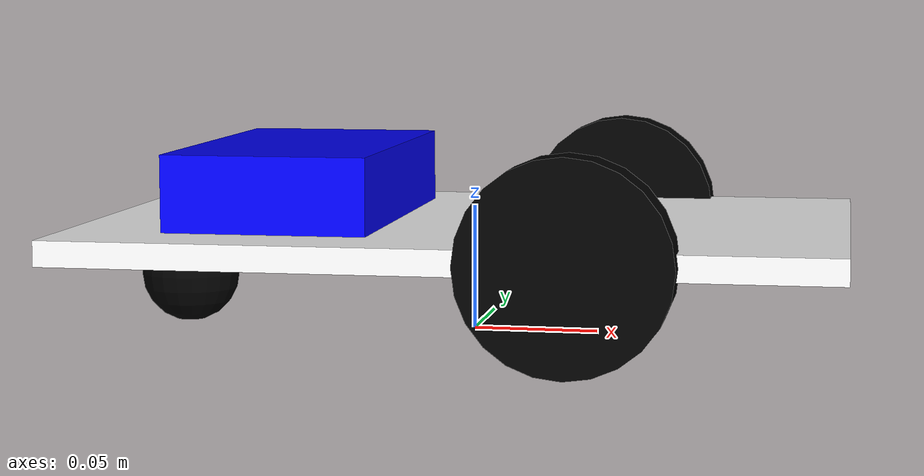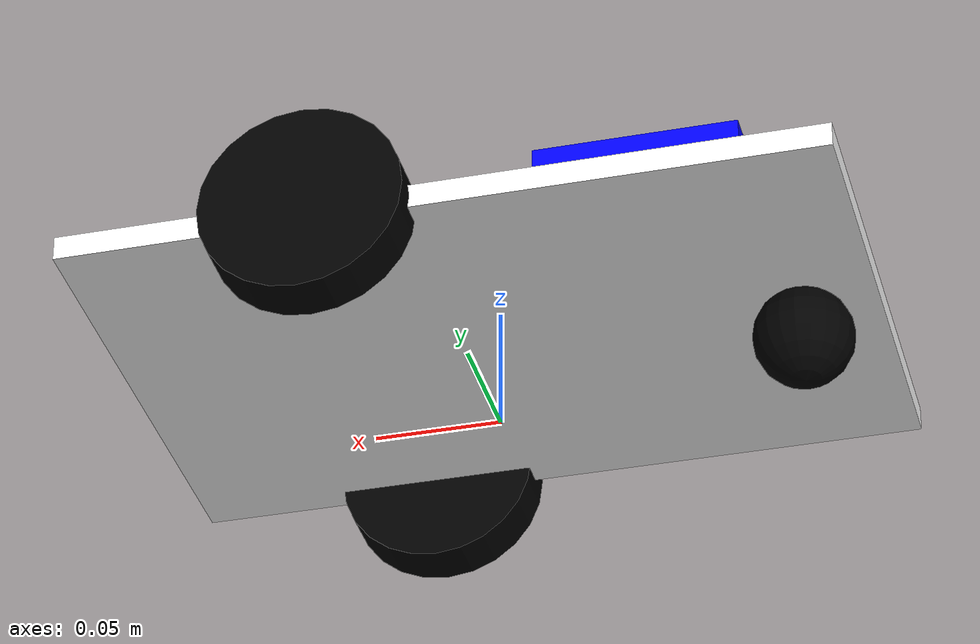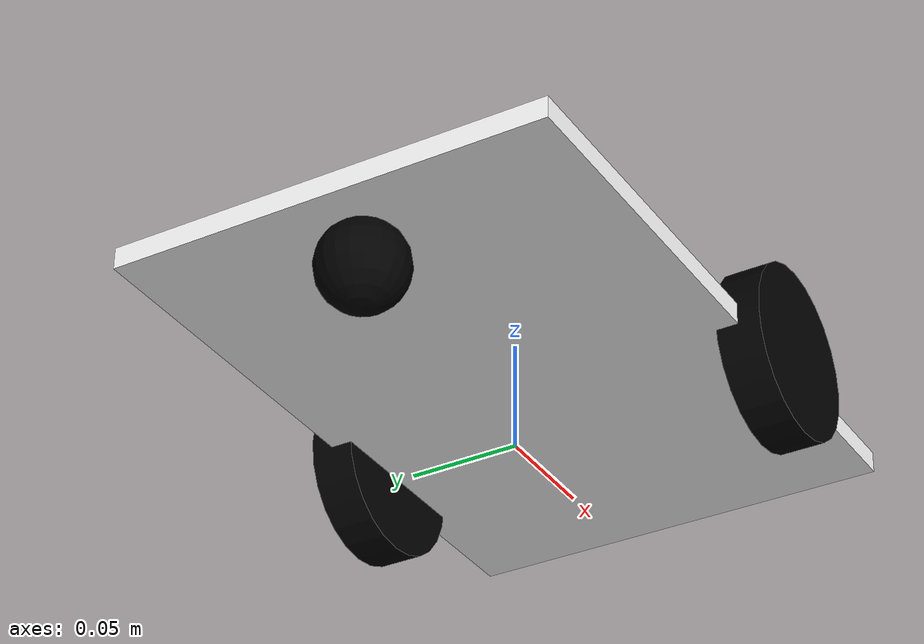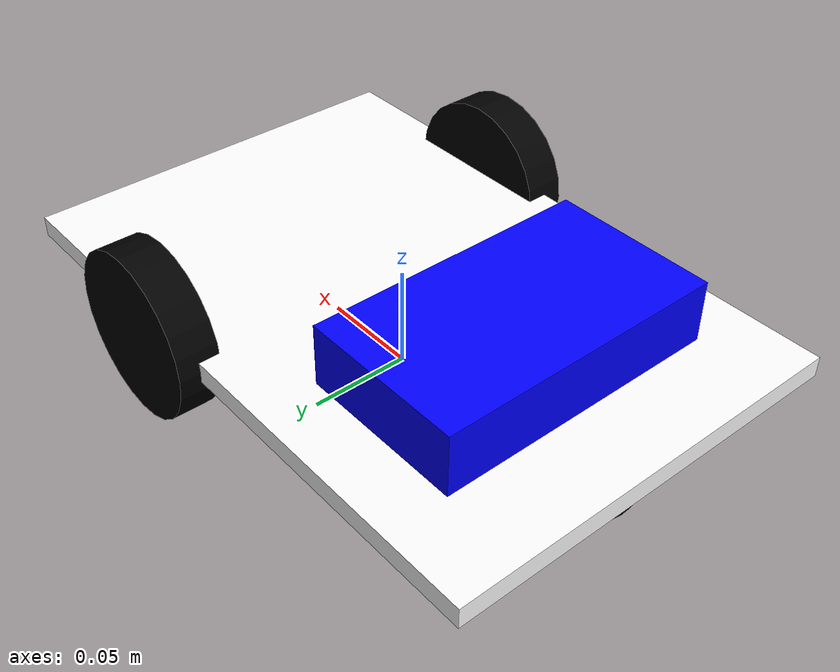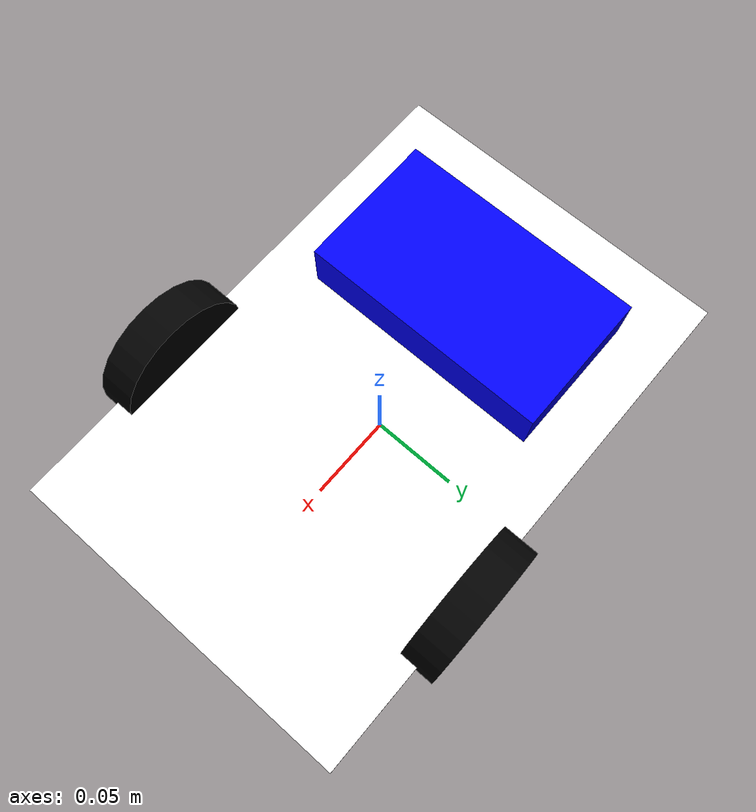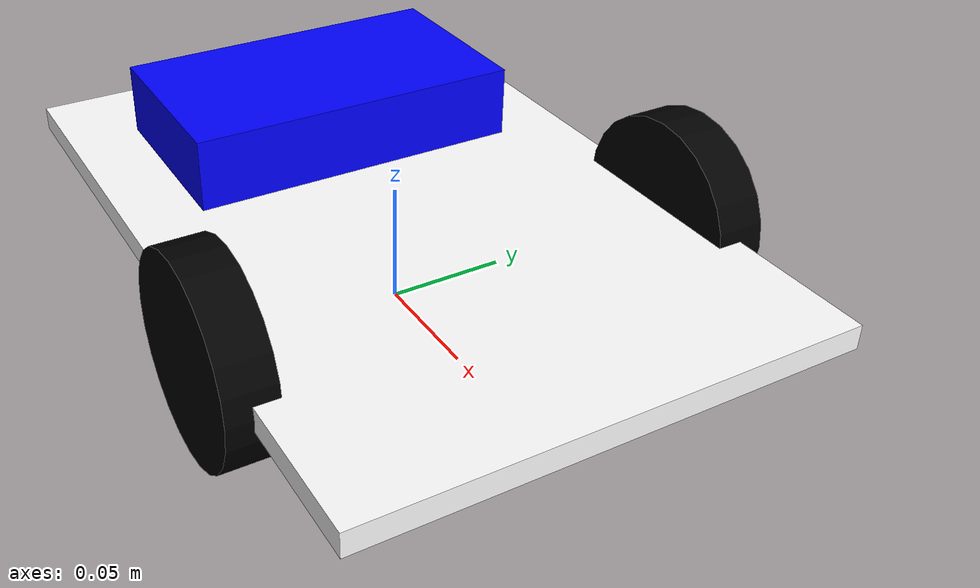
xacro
<?xml version="1.0"?>
<robot name="litebot" xmlns:xacro="http://www.ros.org/wiki/xacro">

<!-- Defining the colors used in this robot -->
  <material name="Black">
      <color rgba="0 0 0 1"/>
  </material>

  <material name="White">
      <color rgba="1 1 1 1"/>
  </material>

  <material name="Blue">
      <color rgba="0 0 1 1"/>
  </material>

  <!-- PROPERTY LIST -->
  <!--All units in m-kg-s-radians unit system -->
  <property name="M_PI" value="3.1415926535897931" />

  <!-- Main body length, width, height and mass -->
  <property name="base_height" value="0.01" />
  <property name="base_width"  value="0.2" />
  <property name="base_length" value="0.3" />
  <property name="base_mass"   value="0.5" />

  <!-- Caster radius and mass -->
  <property name="caster_radius" value="0.02" />
  <property name="caster_mass" value="0.5" />
  <property name="caster_joint_origin_x"  value="-0.12" />

  <!-- Wheel radius, height and mass -->
  <property name="wheel_radius" value="0.04" />
  <property name="wheel_height" value="0.02" />
  <property name="wheel_mass"   value="0.5" />

  <!-- Controller length, width, height and mass -->
  <property name="controller_width"     value="0.08" />
  <property name="controller_length"    value="0.14" />
  <property name="controller_height"    value="0.03" />
  <property name="controller_mass"      value="0.05" />
  <property name="controller_joint_origin_x"  value="-0.07" />

  <!-- Macro for inertia matrix -->
  <xacro:macro name="sphere_inertial_matrix" params="m r">
      <inertial>
          <mass value="${m}" />
          <inertia ixx="${2*m*r*r/5}" ixy="0" ixz="0"
              iyy="${2*m*r*r/5}" iyz="0"
              izz="${2*m*r*r/5}" />
      </inertial>
  </xacro:macro>

  <xacro:macro name="cylinder_inertial_matrix" params="m r h">
      <inertial>
          <mass value="${m}" />
          <inertia ixx="${m*(3*r*r+h*h)/12}" ixy = "0" ixz = "0"
              iyy="${m*(3*r*r+h*h)/12}" iyz = "0"
              izz="${m*r*r/2}" />
      </inertial>
  </xacro:macro>

  <xacro:macro name="box_inertial_matrix" params="m w h d">
      <inertial>
          <mass value="${m}" />
          <inertia ixx="${m*(h*h+d*d)/12}" ixy = "0" ixz = "0"
              iyy="${m*(w*w+d*d)/12}" iyz = "0"
              izz="${m*(w*w+h*h)/12}" />
      </inertial>
  </xacro:macro>

  <!-- Macro for wheel joint -->
  <xacro:macro name="wheel" params="lr translateY"> <!-- lr: left, right -->
      <link name="wheel_${lr}_link">
          <visual>
              <origin xyz="0 0 0" rpy="${M_PI/2} 0  0 " />
              <geometry>
                  <cylinder length="${wheel_height}" radius="${wheel_radius}" />
              </geometry>
              <material name="Black" />
          </visual>
          <collision>
              <origin xyz="0 0 0" rpy="${M_PI/2} 0 0 " />
              <geometry>
                  <cylinder length="${wheel_height}" radius="${wheel_radius}" />
              </geometry>
          </collision>
          <cylinder_inertial_matrix  m="${wheel_mass}" r="${wheel_radius}" h="${wheel_height}" />
      </link>

      <joint name="base_to_wheel_${lr}_joint" type="continuous">
          <parent link="base_link"/>
          <child link="wheel_${lr}_link"/>
          <origin xyz="${base_width/4} ${translateY * base_width/2} 0" rpy="0 0 0" />
          <axis xyz="0 1 0" rpy="0  0" />
      </joint>
  </xacro:macro>

  <!-- BASE-FOOTPRINT -->
  <!-- base_footprint is a fictitious link(frame) that is on the ground right below base_link origin -->
  <link name="base_footprint">
      <inertial>
          <mass value="0.0001" />
          <origin xyz="0 0 0" />
          <inertia ixx="0.0001" ixy="0.0" ixz="0.0"
              iyy="0.0001" iyz="0.0"
              izz="0.0001" />
      </inertial>
      <visual>
          <origin xyz="0 0 0" rpy="0 0 0" />
          <geometry>
              <box size="0.001 0.001 0.001" />
          </geometry>
      </visual>
  </link>

  <joint name="base_footprint_joint" type="fixed">
      <origin xyz="0 0 ${wheel_radius}" rpy="0 0 0" />
      <parent link="base_footprint"/>
      <child link="base_link" />
  </joint>

  <!-- BASE-LINK -->
  <!--Actual body/chassis of the robot-->
  <link name="base_link">
      <box_inertial_matrix  m="${base_mass}" w="${base_width}" h="${base_height}" d="${base_length}" />
      <visual>
          <origin xyz="0 0 0" rpy="0 0 0" />
          <geometry>
              <box size="${base_length} ${base_width} ${base_height}"/>
          </geometry>
          <material name="White" />
      </visual>
      <collision>
          <origin xyz="0 0 0" rpy="0 0 0 " />
          <geometry>
              <box size="${base_length} ${base_width} ${base_height}"/>
          </geometry>
      </collision>
  </link>

  <!--Caster back  -->
  <link name="caster_link">
      <visual>
          <origin xyz="0 0 0 " rpy="0 0 0" />
          <geometry>
              <sphere radius="${caster_radius}" />
          </geometry>
          <material name="Black" />
      </visual>
      <collision>
          <geometry>
              <sphere radius="${caster_radius}" />
          </geometry>
          <origin xyz="0 0 0 " rpy="0 0 0" />
      </collision>
      <sphere_inertial_matrix  m="${caster_mass}" r="${caster_radius}" />
  </link>

  <joint name="base_to_caster_joint" type="fixed">
      <parent link="base_link"/>
      <child link="caster_link"/>
      <origin xyz="${caster_joint_origin_x} 0 ${-caster_radius}" rpy="0 0 0"/>
  </joint>

  <!-- Wheel Definitions -->
  <wheel lr="right"  translateY="1" />
  <wheel lr="left"  translateY="-1" />

  <link name="controller_link">
      <visual>
          <geometry>
              <box size="${controller_width} ${controller_length} ${controller_height}"/>
          </geometry>
          <origin rpy="0 0 0" xyz="0 0 0"/>
          <material name="Blue" />
      </visual>
      <collision>
          <origin rpy="0 0 0" xyz="0 0 0"/>
          <geometry>
              <box size="${controller_width} ${controller_length} ${controller_height}"/>
          </geometry>
      </collision>
      <box_inertial_matrix  m="${controller_mass}" w="${controller_width}" h="${controller_height}" d="${controller_length}" />
  </link>

  <joint name="base_to_controller_joint" type="fixed">
      <parent link="base_link"/>
      <child link="controller_link"/>
      <origin rpy="0 0 0" xyz="${controller_joint_origin_x} 0 ${base_height/2+controller_height/2}"/>
      <axis rpy="0 0 0" xyz="0 0 0"/>
  </joint>

</robot>
